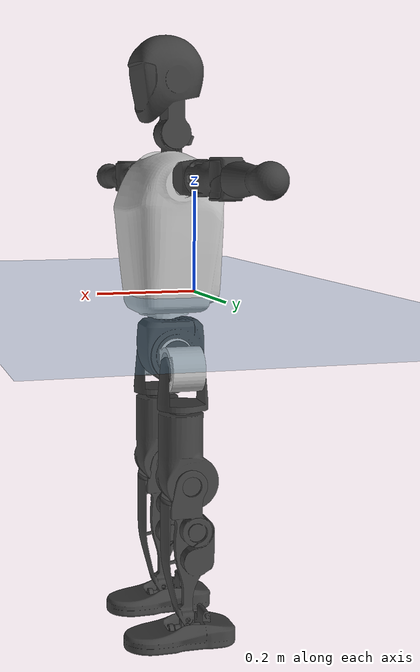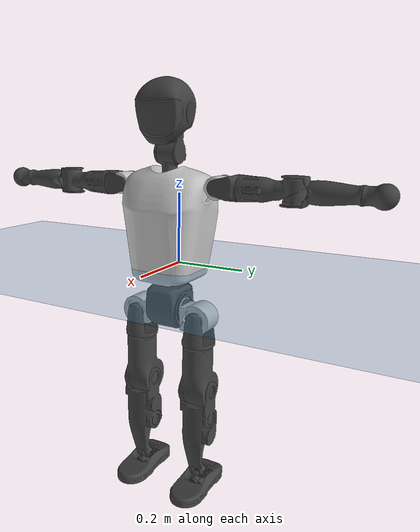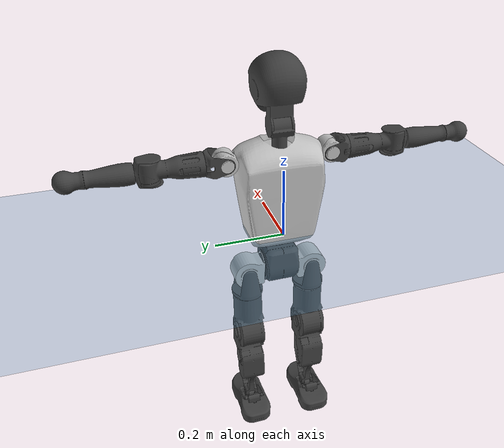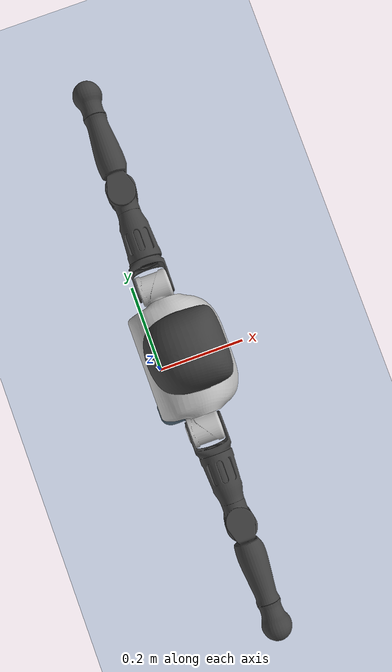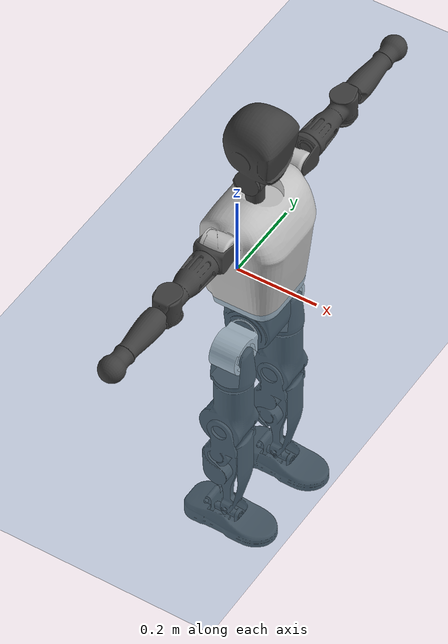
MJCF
<mujoco model="T1">
  <compiler angle="radian" assetdir="assets" balanceinertia="true" inertiafromgeom="false"/>

  <option timestep="0.005" density="1.2" viscosity="2e-05"/>

  <size nkey="1"/>

  <visual>
    <quality shadowsize="8192"/>
    <map shadowclip="0.5"/>
  </visual>

  <default>
    <default class="/">
      <joint armature="0.01" damping="0.01" frictionloss="0.1"/>
      <geom contype="0" conaffinity="0" group="1" solref="-1000 -80"/>
      <site size="0.01 0.005 0.005" group="5"/>
      <general forcelimited="true" biastype="affine" gainprm="25" biasprm="0 -25 -0.6"/>
      <default class="t1">
        <geom rgba="0.25 0.25 0.25 1"/>
        <default class="visual">
          <geom type="mesh" group="2"/>
        </default>
        <default class="collision">
          <geom group="3"/>
        </default>
        <default class="foot">
          <geom size="0.1115 0.05 0.015" type="box" condim="6" group="4" priority="1" solimp="0.015 1 0.015"/>
        </default>
        <default class="reward_collision_sphere">
          <geom group="5" rgba="1 0 0 1"/>
        </default>
      </default>
    </default>
  </default>

  <asset>
    <texture type="skybox" colorspace="auto" name="//unnamed_texture_0" builtin="gradient" rgb1="0.95 0.95 0.95" rgb2="0.95 0.95 0.95" width="100" height="600"/>
    <texture type="2d" colorspace="auto" name="texplane" builtin="checker" rgb1="0.345 0.575 0.748" rgb2="0.345 0.575 0.748" markrgb="1 1 1" width="512" height="512"/>
    <material name="MatPlane" class="/" texture="texplane" texuniform="true" texrepeat="2 2" specular="0.9"/>
    <mesh name="Trunk" class="/" file="Trunk.stl"/>
    <mesh name="H1" class="/" file="H1.stl"/>
    <mesh name="H2" class="/" file="H2.stl"/>
    <mesh name="AL1" class="/" file="AL1.stl"/>
    <mesh name="AL2" class="/" file="AL2.stl"/>
    <mesh name="AL3" class="/" file="AL3.stl"/>
    <mesh name="left_hand_link" class="/" file="left_hand_link.stl"/>
    <mesh name="AR1" class="/" file="AR1.stl"/>
    <mesh name="AR2" class="/" file="AR2.stl"/>
    <mesh name="AR3" class="/" file="AR3.stl"/>
    <mesh name="right_hand_link" class="/" file="right_hand_link.stl"/>
    <mesh name="Waist" class="/" file="Waist.stl"/>
    <mesh name="Hip_Pitch_Left" class="/" file="Hip_Pitch_Left.stl"/>
    <mesh name="Hip_Roll_Left" class="/" file="Hip_Roll_Left.stl"/>
    <mesh name="Hip_Yaw_Left" class="/" file="Hip_Yaw_Left.stl"/>
    <mesh name="Shank_Left" class="/" file="Shank_Left.stl"/>
    <mesh name="Ankle_Cross_Left" class="/" file="Ankle_Cross_Left.stl"/>
    <mesh name="left_foot_link" class="/" file="left_foot_link.stl"/>
    <mesh name="Hip_Pitch_Right" class="/" file="Hip_Pitch_Right.stl"/>
    <mesh name="Hip_Roll_Right" class="/" file="Hip_Roll_Right.stl"/>
    <mesh name="Hip_Yaw_Right" class="/" file="Hip_Yaw_Right.stl"/>
    <mesh name="Shank_Right" class="/" file="Shank_Right.stl"/>
    <mesh name="Ankle_Cross_Right" class="/" file="Ankle_Cross_Right.stl"/>
    <mesh name="right_foot_link" class="/" file="right_foot_link.stl"/>
  </asset>

  <worldbody>
    <geom name="floor" class="/" size="100 100 0.125" type="plane" group="0" material="MatPlane"/>
    <light name="toplight_shadow" class="/" pos="0 0 5" dir="0.0990148 0.0990148 -0.990148" type="directional" ambient="0.04 0.04 0.04" diffuse="0.55 0.55 0.55" specular="0.12 0.12 0.12"/>
    <light name="toplight_fill" class="/" pos="0 0 5" dir="0.0990148 0.0990148 -0.990148" type="directional" castshadow="false" ambient="0.04 0.04 0.04" diffuse="0.3 0.3 0.3" specular="0.08 0.08 0.08"/>
    <body name="trunk" childclass="t1" pos="0.00104122 -0.000239117 -0.000150202" quat="1 -0.000253047 7.58199e-06 -0.000288758">
      <inertial pos="0.0429409 -0.000266138 0.108978" quat="0.999986 -0.000401521 -0.00481936 0.00193988" mass="9.46682" diaginertia="0.02804 0.0562929 0.067796"/>
      <joint name="//unnamed_joint_0" type="free" armature="0" damping="0" frictionloss="0"/>
      <geom name="//unnamed_geom_1" class="visual" rgba="0.76 0.76 0.76 1" mesh="Trunk"/>
      <geom name="//unnamed_geom_2" class="collision" size="0.0690362 0.0920483 0.138072" pos="0.0470945 0 0.124446" type="box"/>
      <geom name="//unnamed_geom_3" class="reward_collision_sphere" size="0.105856" pos="0.0470945 0 0.103705"/>
      <geom name="//unnamed_geom_4" class="reward_collision_sphere" size="0.0138072" pos="0.0470945 0.0798567 0"/>
      <geom name="//unnamed_geom_5" class="reward_collision_sphere" size="0.0138072" pos="0.0470945 -0.0798567 0"/>
      <geom name="//unnamed_geom_6" class="reward_collision_sphere" size="0.0138072" pos="0.0470945 0.100526 0.186669"/>
      <geom name="//unnamed_geom_7" class="reward_collision_sphere" size="0.0138072" pos="0.0470945 -0.100526 0.186669"/>
      <site name="imu" pos="-0.0125576 0.00226927 0.00744495" size="0.00920483"/>
      <camera name="track" pos="0 -1.87898 0" quat="0.707107 0.707107 0 0" mode="trackcom"/>
      <camera name="ego_camera" pos="0.0957587 0 0.435561" quat="-0.5 -0.5 0.5 0.5"/>
      <body name="H1" pos="0.046017 -0.00283269 0.249157" quat="1 -9.85365e-06 -0.000118541 0.000584418">
        <inertial pos="-0.00206329 -0.00181682 0.059674" quat="0.76545 -0.00096526 -0.000544328 0.643494" mass="0.353383" diaginertia="7.22261e-05 0.000157851 0.00017939"/>
        <joint name="AAHead_yaw" pos="0 0 0" axis="-0.0020563 0.0124167 0.999921" range="-1.58159 1.55346" armature="0.0101495" damping="0.00732569" frictionloss="0.0934653"/>
        <geom name="//unnamed_geom_8" class="visual" mesh="H1"/>
        <body name="H2" pos="-0.0014052 -0.000363545 0.0642227" quat="1 -9.92097e-05 -0.000908125 6.16989e-05">
          <inertial pos="0.00588821 -0.0017118 0.102226" quat="0.988209 0.107278 -0.0784446 -0.0760366" mass="0.510581" diaginertia="0.000619281 0.00142722 0.0020977"/>
          <joint name="Head_pitch" pos="0 0 0" axis="-0.000158858 -1 -1.43925e-05" range="-1.24329 0.349636" armature="0.0096891" damping="0.0107941" frictionloss="0.093029"/>
          <geom name="//unnamed_geom_9" class="visual" mesh="H2"/>
          <geom name="//unnamed_geom_10" class="collision" size="0.0736386" pos="0.00784908 0 0.114076"/>
          <geom name="//unnamed_geom_11" class="reward_collision_sphere" size="0.0828435" pos="0.0156982 0 0.103705"/>
        </body>
      </body>
      <body name="AL1" pos="0.0460884 0.103096 0.227852" quat="1 3.47609e-05 0.000461219 -2.71367e-05">
        <inertial pos="-0.00307505 0.0446092 -0.00178307" quat="0.502131 0.49336 -0.508386 0.495988" mass="0.414847" diaginertia="0.000412099 0.000955379 0.000350999"/>
        <joint name="Left_Shoulder_Pitch" pos="0 0 0" axis="0.000141743 0.999992 -0.00400547" stiffness="0.00935747" range="-3.31278 1.22099" armature="0.00964593" damping="0.00517513" frictionloss="0.0863592"/>
        <geom name="//unnamed_geom_12" class="visual" rgba="0.76 0.76 0.76 1" mesh="AL1"/>
        <body name="AL2" pos="-0.000766659 0.0472934 0.00109176" quat="1 0.000149491 -0.000213889 0.000128836">
          <inertial pos="0.00286085 0.036706 -7.85587e-05" quat="0.488109 0.511975 -0.487768 0.511579" mass="0.125807" diaginertia="0.000125911 0.000269045 0.000216308"/>
          <joint name="Left_Shoulder_Roll" pos="0 0 0" axis="-0.999999 0.000351399 -0.00117486" range="-1.55122 1.6942" armature="0.0092819" damping="0.0195969" frictionloss="0.0921816"/>
          <geom name="//unnamed_geom_13" class="visual" mesh="AL2"/>
          <body name="AL3" pos="0.00318816 0.0567747 0.000103222" quat="1 0.000261682 -0.000299944 -0.000316427">
            <inertial pos="-3.12734e-05 0.0790917 0.00167706" quat="0.711884 0.702278 -0.0031933 0.00404215" mass="0.790841" diaginertia="0.00387798 0.00927014 0.000735737"/>
            <joint name="Left_Elbow_Pitch" pos="0 0 0" axis="0.000832508 -0.999999 -0.00136293" range="-2.27847 2.30882" armature="0.00818615" damping="0.00542626" frictionloss="0.0906944"/>
            <geom name="//unnamed_geom_14" class="visual" mesh="AL3"/>
            <geom name="//unnamed_geom_15" class="collision" size="0.0276145 0.0690362" pos="0 0.0469745 0" quat="0.707105 0.707108 0 0" type="cylinder"/>
            <geom name="//unnamed_geom_16" class="reward_collision_sphere" size="0.0331374"/>
            <body name="left_hand_link" pos="-0.000155858 0.138316 -0.000101787" quat="1 -0.000314709 -0.000392402 -0.000695565">
              <inertial pos="0.00245559 0.100977 0.000941146" quat="0.70515 0.709057 0.000602798 -0.000834839" mass="0.251818" diaginertia="0.0024151 0.00596104 0.000250223"/>
              <joint name="Left_Elbow_Yaw" pos="0 0 0" axis="0.000411873 -0.00105111 0.999999" range="-2.44081 -0.0125661" armature="0.0100105" damping="0.0191463" frictionloss="0.100361"/>
              <geom name="//unnamed_geom_17" class="visual" mesh="left_hand_link"/>
              <geom name="//unnamed_geom_18" class="collision" size="0.0276145 0.0805423" pos="0 0.122134 0" quat="0.707105 0.707108 0 0" type="cylinder"/>
              <geom name="//unnamed_geom_19" class="reward_collision_sphere" size="0.0460242"/>
              <geom name="//unnamed_geom_20" class="reward_collision_sphere" size="0.0322169" pos="0 0.103344 0"/>
              <geom name="//unnamed_geom_21" class="reward_collision_sphere" size="0.0322169" pos="0 0.201991 0"/>
            </body>
          </body>
        </body>
      </body>
      <body name="AR1" pos="0.0463731 -0.101313 0.227259" quat="1 0.000168829 0.000362254 -0.000322641">
        <inertial pos="-0.00107838 -0.0433989 -9.25784e-05" quat="0.503773 0.495811 -0.504601 0.495744" mass="0.412313" diaginertia="0.000412075 0.000951496 0.000349081"/>
        <joint name="Right_Shoulder_Pitch" pos="0 0 0" axis="0.000969239 -0.999999 -0.000376068" stiffness="0.0108902" range="-1.21487 3.28937" armature="0.00969583" damping="0" frictionloss="0.0896738"/>
        <geom name="//unnamed_geom_22" class="visual" rgba="0.76 0.76 0.76 1" mesh="AR1"/>
        <body name="AR2" pos="0.001172 -0.0436605 -0.00237182" quat="1 -6.03204e-05 -0.000161905 0.000139803">
          <inertial pos="0.00241732 -0.0339484 -0.00228625" quat="0.511534 0.487793 -0.512796 0.487269" mass="0.126571" diaginertia="0.000121065 0.000248095 0.000213432"/>
          <joint name="Right_Shoulder_Roll" pos="0 0 0" axis="-0.999918 -0.0021378 0.0126081" range="-1.68842 1.57869" armature="0.00908909" damping="0.0210545" frictionloss="0.0895693"/>
          <geom name="//unnamed_geom_23" class="visual" mesh="AR2"/>
          <body name="AR3" pos="0.000946728 -0.0561864 -0.000667296" quat="1 8.1097e-05 0.000152243 -0.000163241">
            <inertial pos="-0.00284751 -0.0810169 -0.000296887" quat="0.707618 0.706594 0.00111675 0.000362133" mass="0.793708" diaginertia="0.00385869 0.00932041 0.00076606"/>
            <joint name="Right_Elbow_Pitch" pos="0 0 0" axis="-0.000103232 1 -0.000141162" range="-2.27315 2.24807" armature="0.00932591" damping="0.0142388" frictionloss="0.080605"/>
            <geom name="//unnamed_geom_24" class="visual" mesh="AR3"/>
            <geom name="//unnamed_geom_25" class="collision" size="0.0276145 0.0690362" pos="0 -0.0469745 0" quat="0.707105 0.707108 0 0" type="cylinder"/>
            <geom name="//unnamed_geom_26" class="reward_collision_sphere" size="0.0331374"/>
            <body name="right_hand_link" pos="-0.000165834 -0.137467 -0.000563892" quat="1 -0.000107318 0.000308056 -0.000197343">
              <inertial pos="0.000638709 -0.102112 0.00307854" quat="0.706467 0.707746 -0.000208912 0.000169801" mass="0.256242" diaginertia="0.00241158 0.00580395 0.000259912"/>
              <joint name="Right_Elbow_Yaw" pos="0 0 0" axis="2.05973e-05 -0.000815562 1" stiffness="0.003253" range="0.0104012 2.45712" armature="0.00910667" damping="0.00756688" frictionloss="0.0811236"/>
              <geom name="//unnamed_geom_27" class="visual" mesh="right_hand_link"/>
              <geom name="//unnamed_geom_28" class="collision" size="0.0276145 0.0805423" pos="0 -0.122134 0" quat="0.707105 0.707108 0 0" type="cylinder"/>
              <geom name="//unnamed_geom_29" class="reward_collision_sphere" size="0.0460242"/>
              <geom name="//unnamed_geom_30" class="reward_collision_sphere" size="0.0322169" pos="0 -0.103344 0"/>
              <geom name="//unnamed_geom_31" class="reward_collision_sphere" size="0.0322169" pos="0 -0.201991 0"/>
            </body>
          </body>
        </body>
      </body>
      <body name="Waist" pos="0.0497352 -9.99412e-05 -0.12068" quat="1 3.72381e-05 0.000489305 0.000286635">
        <inertial pos="0.0013029 -0.000459813 0.00719329" quat="0.983959 -0.000744418 -0.178382 0.0019507" mass="1.97089" diaginertia="0.00164441 0.00381601 0.00585013"/>
        <joint name="Waist" pos="0 0 0" axis="0.00964113 0.000279728 0.999953" range="-1.58421 1.55892" armature="0.00906806" damping="0.00821394" frictionloss="0.0812362"/>
        <geom name="//unnamed_geom_32" class="visual" mesh="Waist"/>
        <body name="Hip_Pitch_Left" pos="0.00210788 0.0983656 0.000722686" quat="1 -0.00038466 6.56529e-05 -0.000754387">
          <inertial pos="0.000592209 -0.00908296 -0.0197033" quat="0.975142 0.221092 0.0146094 0.00171508" mass="0.790749" diaginertia="0.000530407 0.00108603 0.00153993"/>
          <joint name="Left_Hip_Pitch" pos="0 0 0" axis="-3.94362e-06 1 -5.41567e-06" stiffness="0.00186634" range="-1.78322 1.57361" armature="0.00970927" damping="0.0202687" frictionloss="0.0927856"/>
          <geom name="//unnamed_geom_33" class="visual" rgba="0.76 0.76 0.76 1" mesh="Hip_Pitch_Left"/>
          <body name="Hip_Roll_Left" pos="0.00258129 -7.16748e-05 -0.0210523" quat="0.999999 0.000141909 -0.0013539 0.000307031">
            <inertial pos="0.00226662 0.000952905 -0.0558106" quat="0.707987 -0.00823249 -0.00587409 0.706153" mass="0.283788" diaginertia="0.00048619 0.00107714 0.000592837"/>
            <joint name="Left_Hip_Roll" pos="0 0 0" axis="-0.999921 0.00770352 0.00990914" range="-1.51712 0.202664" armature="0.00898526" damping="0.00410973" frictionloss="0.0946867"/>
            <geom name="//unnamed_geom_34" class="visual" mesh="Hip_Roll_Left"/>
            <geom name="//unnamed_geom_35" class="reward_collision_sphere" size="0.0506266"/>
            <body name="Hip_Yaw_Left" pos="0.001258 -0.000537988 -0.0853252" quat="0.999999 -0.000432185 -0.000221884 -0.00113443">
              <inertial pos="-0.00774966 0.000936099 -0.0917564" quat="0.695323 -0.029275 -0.0308401 0.717438" mass="1.69267" diaginertia="0.00797122 0.018779 0.00315324"/>
              <joint name="Left_Hip_Yaw" pos="0 0 0" axis="-0.000271462 0.00103723 -0.999999" range="-0.953396 1.05266" armature="0.00918985" damping="0.00731827" frictionloss="0.101075"/>
              <geom name="//unnamed_geom_36" class="visual" mesh="Hip_Yaw_Left"/>
              <geom name="//unnamed_geom_37" class="collision" size="0.0460242 0.0736386" type="cylinder"/>
              <body name="Shank_Left" pos="-0.011264 0.0018935 -0.138836" quat="1 -2.6151e-05 -0.000115478 -9.77558e-06">
                <inertial pos="-0.00727769 -0.000170903 -0.129982" quat="0.997255 -0.00948307 -0.0307797 0.0666726" mass="1.34476" diaginertia="0.0103752 0.0262376 0.00227319"/>
                <joint name="Left_Knee_Pitch" pos="0 0 0" axis="0.00154073 0.999967 -0.00793121" range="-0.000776104 2.37291" armature="0.008572" damping="0.00772344" frictionloss="0.103755"/>
                <geom name="//unnamed_geom_38" class="visual" mesh="Shank_Left"/>
                <geom name="//unnamed_geom_39" class="collision" size="0.0460242 0.0690362" pos="0 0 -0.124446" type="cylinder"/>
                <geom name="//unnamed_geom_40" class="reward_collision_sphere" size="0.0598314"/>
                <body name="Ankle_Cross_Left" pos="0.00210379 0.000389033 -0.291485" quat="1 2.87172e-06 2.08288e-05 4.61942e-06">
                  <inertial pos="-0.00303823 -0.000674732 -0.00837184" quat="0.443254 0.550972 0.551028 0.443085" mass="0.057074" diaginertia="8.65327e-06 1.88555e-05 1.35027e-05"/>
                  <joint name="Left_Ankle_Pitch" pos="0 0 0" axis="-0.00110431 0.999979 -0.00640029" range="-0.875515 0.32559" armature="0.0103955" damping="0.0147704" frictionloss="0.0932463"/>
                  <geom name="//unnamed_geom_41" class="visual" mesh="Ankle_Cross_Left"/>
                  <body name="left_foot_link" pos="0.00186106 0.000190499 -0.012463" quat="1 2.14151e-05 3.6229e-05 2.51967e-05">
                    <inertial pos="-0.00257393 0.00127768 -0.00947151" quat="0.00116047 0.6203 0.00148203 0.784362" mass="0.540063" diaginertia="0.000799147 0.00172389 0.00255544"/>
                    <joint name="Left_Ankle_Roll" pos="0 0 0" axis="-0.999991 -0.00396363 0.00125425" range="-0.432768 0.441537" armature="0.00925924" damping="0.000180498" frictionloss="0.0941881"/>
                    <geom name="//unnamed_geom_42" class="visual" mesh="left_foot_link"/>
                    <geom name="left_foot" class="foot" size="0.101448 0.0444464 0.0141437" pos="0.00784908 0 -0.0155558"/>
                    <geom name="//unnamed_geom_44" class="reward_collision_sphere" size="0.0478651" pos="0.00784908 0 -0.0155558"/>
                    <geom name="//unnamed_geom_45" class="reward_collision_sphere" size="0.0276145" pos="0.0745662 -0.0216083 -0.0155558"/>
                    <geom name="//unnamed_geom_46" class="reward_collision_sphere" size="0.0276145" pos="-0.0549435 -0.0216083 -0.0155558"/>
                    <site name="left_foot" class="foot" pos="0.00784908 0 -0.0155558" size="0.00920483"/>
                  </body>
                </body>
              </body>
            </body>
          </body>
        </body>
        <body name="Hip_Pitch_Right" pos="-0.000216507 -0.098879 -0.000677915" quat="1 -0.000234557 1.04283e-05 0.000106163">
          <inertial pos="0.000748397 0.00727999 -0.0207233" quat="0.973378 -0.228827 0.0108569 -0.00752174" mass="0.794288" diaginertia="0.000520247 0.00110246 0.00149406"/>
          <joint name="Right_Hip_Pitch" pos="0 0 0" axis="0.000565719 -0.999994 0.00334701" range="-1.62284 1.85157" armature="0.00931544" damping="0.0181396" frictionloss="0.0806691"/>
          <geom name="//unnamed_geom_47" class="visual" rgba="0.76 0.76 0.76 1" mesh="Hip_Pitch_Right"/>
          <body name="Hip_Roll_Right" pos="0.00267626 0.000369518 -0.0216323" quat="1 0.000220305 -0.000328076 -7.03605e-05">
            <inertial pos="0.0020026 -0.00210699 -0.0538405" quat="0.707685 -0.00962133 -0.00941834 0.7064" mass="0.292916" diaginertia="0.000507897 0.00109231 0.00062107"/>
            <joint name="Right_Hip_Roll" pos="0 0 0" axis="-0.999891 -0.00886827 -0.0117691" stiffness="0.00134354" range="-0.205038 1.59316" armature="0.00875734" damping="0.00620029" frictionloss="0.0879832"/>
            <geom name="//unnamed_geom_48" class="visual" mesh="Hip_Roll_Right"/>
            <geom name="//unnamed_geom_49" class="reward_collision_sphere" size="0.0506266"/>
            <body name="Hip_Yaw_Right" pos="-0.00106961 -0.000617739 -0.0872835" quat="1 9.10191e-05 -9.82472e-05 2.24135e-05">
              <inertial pos="-0.00493823 0.00189611 -0.0934052" quat="0.722023 -0.0360389 -0.0279477 0.690364" mass="1.69613" diaginertia="0.00775621 0.0186732 0.00314292"/>
              <joint name="Right_Hip_Yaw" pos="0 0 0" axis="-0.00177816 -0.00150161 -0.999997" stiffness="0.0014479" range="-0.98531 0.983243" armature="0.00963876" damping="0.0154127" frictionloss="0.0916094"/>
              <geom name="//unnamed_geom_50" class="visual" mesh="Hip_Yaw_Right"/>
              <geom name="//unnamed_geom_51" class="collision" size="0.0460242 0.0736386" type="cylinder"/>
              <body name="Shank_Right" pos="-0.0104291 -0.00277775 -0.13769" quat="1 3.94587e-06 2.06129e-05 -3.80131e-05">
                <inertial pos="-0.00719399 0.00219202 -0.127245" quat="0.999543 -0.00416983 -0.0194033 -0.0227872" mass="1.41934" diaginertia="0.0101313 0.0249249 0.00234263"/>
                <joint name="Right_Knee_Pitch" pos="0 0 0" axis="0.00263209 -0.999989 -0.00385257" stiffness="0.0007908" range="-2.34782 0.005728" armature="0.00921046" damping="0.00154388" frictionloss="0.0932171"/>
                <geom name="//unnamed_geom_52" class="visual" mesh="Shank_Right"/>
                <geom name="//unnamed_geom_53" class="collision" size="0.0460242 0.0690362" pos="0 0 -0.124446" type="cylinder"/>
                <geom name="//unnamed_geom_54" class="reward_collision_sphere" size="0.0598314"/>
                <body name="Ankle_Cross_Right" pos="-0.00105956 -0.00122229 -0.290371" quat="1 -6.1105e-06 -5.93441e-05 -0.000167946">
                  <inertial pos="-0.00191693 -0.00180681 -0.0093245" quat="0.447711 0.546775 0.5444 0.451909" mass="0.0570729" diaginertia="8.65272e-06 1.76517e-05 1.31301e-05"/>
                  <joint name="Right_Ankle_Pitch" pos="0 0 0" axis="0.00444869 -0.99998 0.0044084" range="-0.35068 0.870096" armature="0.00974357" damping="0" frictionloss="0.0899673"/>
                  <geom name="//unnamed_geom_55" class="visual" mesh="Ankle_Cross_Right"/>
                  <body name="right_foot_link" pos="-0.000966227 -0.00143782 -0.00991043" quat="1 1.00585e-06 4.00261e-07 1.162e-06">
                    <inertial pos="0.000909638 -0.000590028 -0.00716568" quat="0.00230247 0.621684 0.00224456 0.783261" mass="0.540469" diaginertia="0.000825348 0.00172497 0.00260473"/>
                    <joint name="Right_Ankle_Roll" pos="0 0 0" axis="-0.999994 -0.00328009 0.00124373" stiffness="0.000566222" range="-0.45017 0.421141" armature="0.00937734" damping="0.0115793" frictionloss="0.087033"/>
                    <geom name="//unnamed_geom_56" class="visual" mesh="right_foot_link"/>
                    <geom name="right_foot" class="foot" size="0.102057 0.0437533 0.0137282" pos="0.00784908 0 -0.0155558"/>
                    <geom name="//unnamed_geom_58" class="reward_collision_sphere" size="0.0368193"/>
                    <geom name="//unnamed_geom_59" class="reward_collision_sphere" size="0.0276145" pos="0.00784908 0 -0.0155558"/>
                    <geom name="//unnamed_geom_60" class="reward_collision_sphere" size="0.0276145" pos="0.0745662 0.0216083 -0.0155558"/>
                    <geom name="//unnamed_geom_61" class="reward_collision_sphere" size="0.0276145" pos="-0.0549435 0.0216083 -0.0155558"/>
                    <site name="right_foot" class="foot" pos="0.00784908 0 -0.0155558" size="0.00920483"/>
                  </body>
                </body>
              </body>
            </body>
          </body>
        </body>
      </body>
    </body>
  </worldbody>

  <contact>
    <pair class="/" geom1="floor" geom2="left_foot" name="//unnamed_contact_0"/>
    <pair class="/" geom1="floor" geom2="right_foot" name="//unnamed_contact_1"/>
  </contact>

  <actuator>
    <general name="AAHead_yaw" class="/" joint="AAHead_yaw" forcerange="-6.75622 6.75622" gainprm="22.3633" biasprm="0 -22.3633 -0.515296"/>
    <general name="Head_pitch" class="/" joint="Head_pitch" forcerange="-6.23344 6.23344" gainprm="22.3633" biasprm="0 -22.3633 -0.515296"/>
    <general name="Left_Shoulder_Pitch" class="/" joint="Left_Shoulder_Pitch" forcerange="-16.6601 16.6601" gainprm="22.3633" biasprm="0 -22.3633 -0.515296"/>
    <general name="Left_Shoulder_Roll" class="/" joint="Left_Shoulder_Roll" forcerange="-16.1693 16.1693" gainprm="22.3633" biasprm="0 -22.3633 -0.515296"/>
    <general name="Left_Elbow_Pitch" class="/" joint="Left_Elbow_Pitch" forcerange="-17.5794 17.5794" gainprm="22.3633" biasprm="0 -22.3633 -0.515296"/>
    <general name="Left_Elbow_Yaw" class="/" joint="Left_Elbow_Yaw" forcerange="-16.9876 16.9876" gainprm="22.3633" biasprm="0 -22.3633 -0.515296"/>
    <general name="Right_Shoulder_Pitch" class="/" joint="Right_Shoulder_Pitch" forcerange="-16.9401 16.9401" gainprm="22.3633" biasprm="0 -22.3633 -0.515296"/>
    <general name="Right_Shoulder_Roll" class="/" joint="Right_Shoulder_Roll" forcerange="-17.1872 17.1872" gainprm="22.3633" biasprm="0 -22.3633 -0.515296"/>
    <general name="Right_Elbow_Pitch" class="/" joint="Right_Elbow_Pitch" forcerange="-16.7399 16.7399" gainprm="22.3633" biasprm="0 -22.3633 -0.515296"/>
    <general name="Right_Elbow_Yaw" class="/" joint="Right_Elbow_Yaw" forcerange="-15.8686 15.8686" gainprm="22.3633" biasprm="0 -22.3633 -0.515296"/>
    <general name="Waist" class="/" joint="Waist" forcerange="-28.3276 28.3276" gainprm="22.3633" biasprm="0 -22.3633 -0.515296"/>
    <general name="Left_Hip_Pitch" class="/" joint="Left_Hip_Pitch" forcerange="-41.2341 41.2341" gainprm="22.3633" biasprm="0 -22.3633 -0.515296"/>
    <general name="Left_Hip_Roll" class="/" joint="Left_Hip_Roll" forcerange="-26.8232 26.8232" gainprm="22.3633" biasprm="0 -22.3633 -0.515296"/>
    <general name="Left_Hip_Yaw" class="/" joint="Left_Hip_Yaw" forcerange="-26.0333 26.0333" gainprm="22.3633" biasprm="0 -22.3633 -0.515296"/>
    <general name="Left_Knee_Pitch" class="/" joint="Left_Knee_Pitch" forcerange="-54.3491 54.3491" gainprm="22.3633" biasprm="0 -22.3633 -0.515296"/>
    <general name="Left_Ankle_Pitch" class="/" joint="Left_Ankle_Pitch" forcerange="-18.3115 18.3115" gainprm="22.3633" biasprm="0 -22.3633 -0.515296"/>
    <general name="Left_Ankle_Roll" class="/" joint="Left_Ankle_Roll" forcerange="-13.5218 13.5218" gainprm="22.3633" biasprm="0 -22.3633 -0.515296"/>
    <general name="Right_Hip_Pitch" class="/" joint="Right_Hip_Pitch" forcerange="-40.7089 40.7089" gainprm="22.3633" biasprm="0 -22.3633 -0.515296"/>
    <general name="Right_Hip_Roll" class="/" joint="Right_Hip_Roll" forcerange="-28.1702 28.1702" gainprm="22.3633" biasprm="0 -22.3633 -0.515296"/>
    <general name="Right_Hip_Yaw" class="/" joint="Right_Hip_Yaw" forcerange="-28.5777 28.5777" gainprm="22.3633" biasprm="0 -22.3633 -0.515296"/>
    <general name="Right_Knee_Pitch" class="/" joint="Right_Knee_Pitch" forcerange="-51.6059 51.6059" gainprm="22.3633" biasprm="0 -22.3633 -0.515296"/>
    <general name="Right_Ankle_Pitch" class="/" joint="Right_Ankle_Pitch" forcerange="-16.8871 16.8871" gainprm="22.3633" biasprm="0 -22.3633 -0.515296"/>
    <general name="Right_Ankle_Roll" class="/" joint="Right_Ankle_Roll" forcerange="-13.3214 13.3214" gainprm="22.3633" biasprm="0 -22.3633 -0.515296"/>
  </actuator>

  <sensor>
    <gyro site="imu" name="imu_angular_velocity"/>
    <velocimeter site="imu" name="imu_linear_velocity"/>
    <framelinvel objtype="site" objname="left_foot" name="left_foot_global_linear_velocity"/>
    <framelinvel objtype="site" objname="right_foot" name="right_foot_global_linear_velocity"/>
  </sensor>

  <keyframe>
    <key name="home" qpos="0 0 0.6385 1 0 0 0 0 0 0 1.4 0 -0.4 0 -1.4 0 0.4 0 -0.4 0 0 0.8 -0.4 0 0.4 0 0 -0.8 0.4 0"/>
  </keyframe>
</mujoco>
